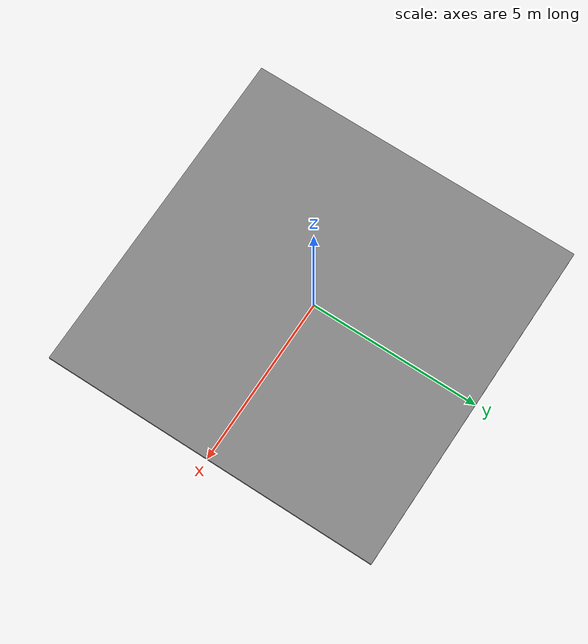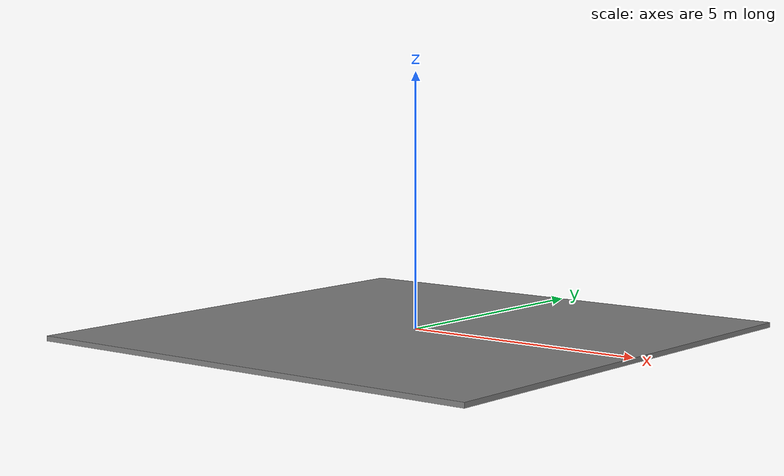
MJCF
<!-- Simple textured floor component for MuJoCo scenes -->
<!-- This demonstrates how to create reusable scene components -->

<mujoco model="textured_floor_component">
  <asset>
    <!-- Checker pattern texture -->
    <texture name="floor_checker" type="2d" builtin="checker"
             rgb1="0.4 0.4 0.4" rgb2="0.6 0.6 0.6"
             width="512" height="512"/>

    <!-- Floor material -->
    <material name="floor_material" texture="floor_checker"
              texrepeat="10 10" reflectance="0.1"/>
  </asset>

  <worldbody>
    <!-- Floor geometry -->
    <geom name="floor" type="box"
          pos="0 0 -0.05"
          size="5 5 0.05"
          material="floor_material"/>
  </worldbody>
</mujoco>
